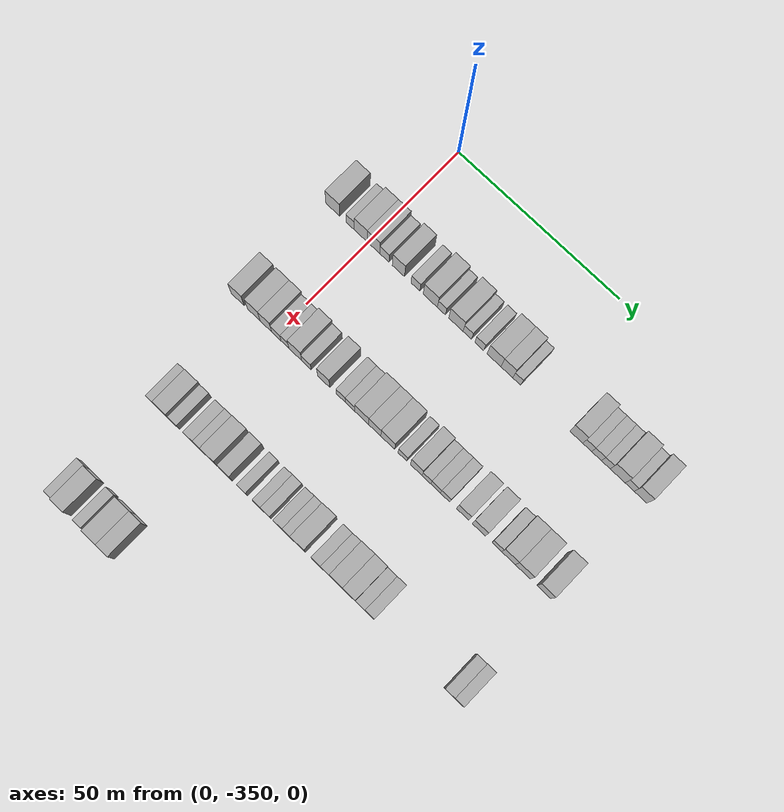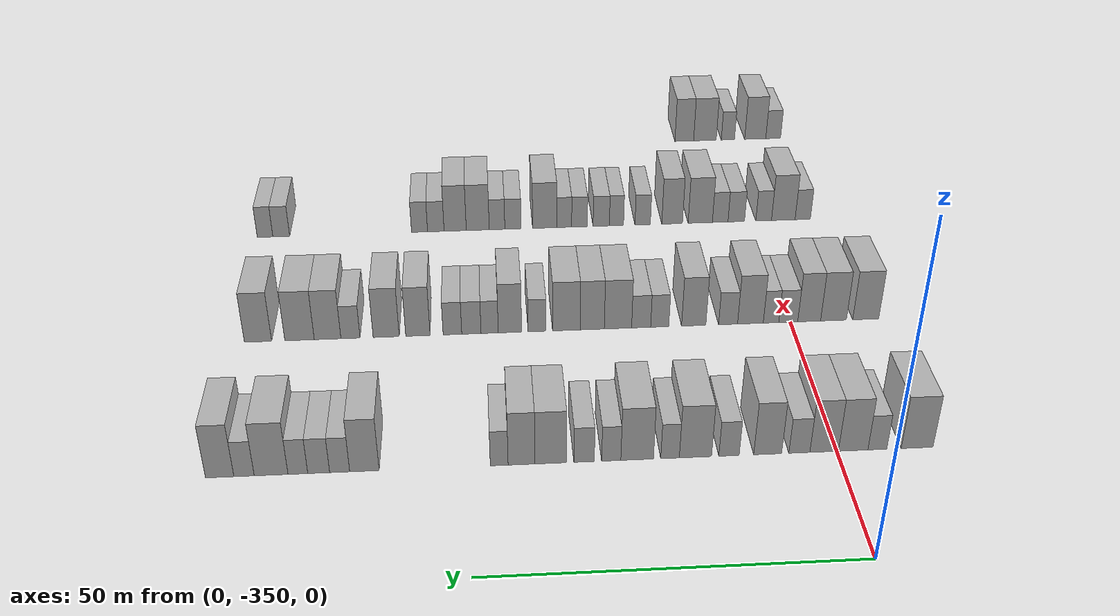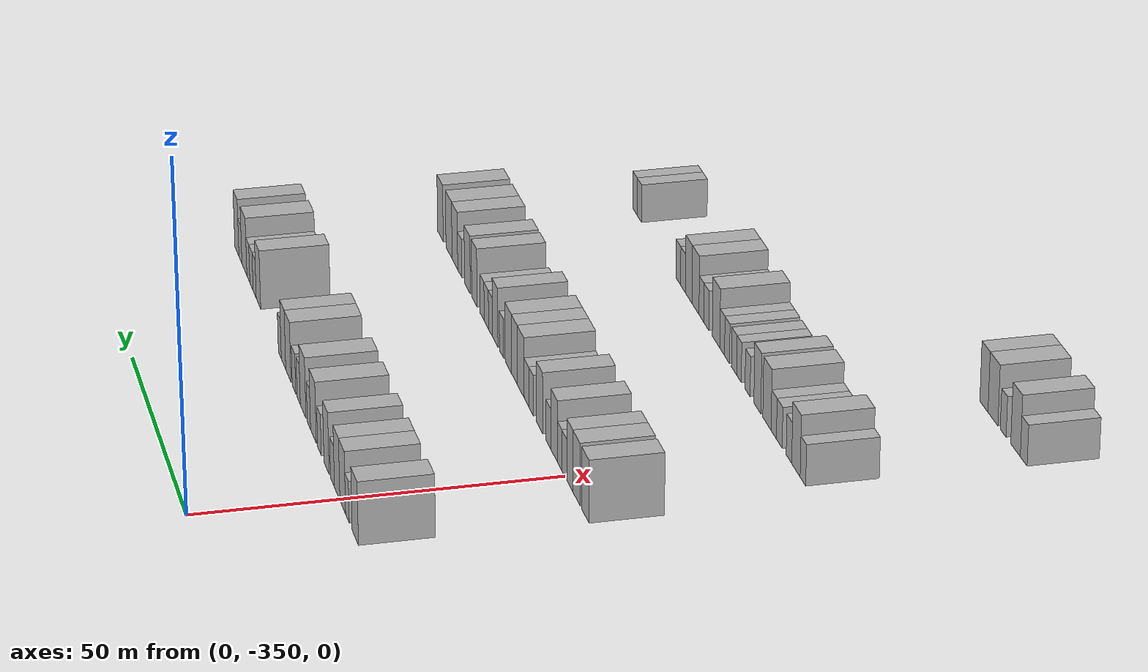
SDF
<sdf version="1.6">
 <world name="default">
  <model name="building_21">
   <static>1</static>
   <pose>25.0000 -361.1903 0 0.000000 0.000000 0.000000</pose>
   <link name="link">
    <pose>0 0 4.50 0 0 0</pose>
    <collision name="collision"><geometry><box><size>10.0000 4.4393 9.0000</size></box></geometry></collision>
    <visual name="visual">
     <cast_shadows>0</cast_shadows>
     <geometry><box><size>10.0000 4.4393 9.0000</size></box></geometry>
     <material>
      <script>
       <uri>model://HANNAS_wall/materials/scripts</uri>
       <uri>model://HANNAS_wall/materials/textures</uri>
       <name>vrc/HANNAS_wall</name>
      </script>
     </material>
    </visual>
   </link>
  </model>
  <model name="building_22">
   <static>1</static>
   <pose>25.0000 -355.6557 0 0.000000 0.000000 0.000000</pose>
   <link name="link">
    <pose>0 0 3.00 0 0 0</pose>
    <collision name="collision"><geometry><box><size>10.0000 2.6299 6.0000</size></box></geometry></collision>
    <visual name="visual">
     <cast_shadows>0</cast_shadows>
     <geometry><box><size>10.0000 2.6299 6.0000</size></box></geometry>
     <material>
      <script>
       <uri>model://HANNAS_wall/materials/scripts</uri>
       <uri>model://HANNAS_wall/materials/textures</uri>
       <name>vrc/HANNAS_wall</name>
      </script>
     </material>
    </visual>
   </link>
  </model>
  <model name="building_23">
   <static>1</static>
   <pose>25.0000 -352.2939 0 0.000000 0.000000 0.000000</pose>
   <link name="link">
    <pose>0 0 4.50 0 0 0</pose>
    <collision name="collision"><geometry><box><size>10.0000 4.0938 9.0000</size></box></geometry></collision>
    <visual name="visual">
     <cast_shadows>0</cast_shadows>
     <geometry><box><size>10.0000 4.0938 9.0000</size></box></geometry>
     <material>
      <script>
       <uri>model://HANNAS_wall/materials/scripts</uri>
       <uri>model://HANNAS_wall/materials/textures</uri>
       <name>vrc/HANNAS_wall</name>
      </script>
     </material>
    </visual>
   </link>
  </model>
  <model name="building_24">
   <static>1</static>
   <pose>25.0000 -348.2709 0 0.000000 0.000000 0.000000</pose>
   <link name="link">
    <pose>0 0 4.50 0 0 0</pose>
    <collision name="collision"><geometry><box><size>10.0000 3.9522 9.0000</size></box></geometry></collision>
    <visual name="visual">
     <cast_shadows>0</cast_shadows>
     <geometry><box><size>10.0000 3.9522 9.0000</size></box></geometry>
     <material>
      <script>
       <uri>model://HANNAS_wall/materials/scripts</uri>
       <uri>model://HANNAS_wall/materials/textures</uri>
       <name>vrc/HANNAS_wall</name>
      </script>
     </material>
    </visual>
   </link>
  </model>
  <model name="building_25">
   <static>1</static>
   <pose>25.0000 -344.8413 0 0.000000 0.000000 0.000000</pose>
   <link name="link">
    <pose>0 0 3.00 0 0 0</pose>
    <collision name="collision"><geometry><box><size>10.0000 2.9071 6.0000</size></box></geometry></collision>
    <visual name="visual">
     <cast_shadows>0</cast_shadows>
     <geometry><box><size>10.0000 2.9071 6.0000</size></box></geometry>
     <material>
      <script>
       <uri>model://HANNAS_wall/materials/scripts</uri>
       <uri>model://HANNAS_wall/materials/textures</uri>
       <name>vrc/HANNAS_wall</name>
      </script>
     </material>
    </visual>
   </link>
  </model>
  <model name="building_26">
   <static>1</static>
   <pose>25.0000 -340.4635 0 0.000000 0.000000 0.000000</pose>
   <link name="link">
    <pose>0 0 4.50 0 0 0</pose>
    <collision name="collision"><geometry><box><size>10.0000 3.8486 9.0000</size></box></geometry></collision>
    <visual name="visual">
     <cast_shadows>0</cast_shadows>
     <geometry><box><size>10.0000 3.8486 9.0000</size></box></geometry>
     <material>
      <script>
       <uri>model://HANNAS_wall/materials/scripts</uri>
       <uri>model://HANNAS_wall/materials/textures</uri>
       <name>vrc/HANNAS_wall</name>
      </script>
     </material>
    </visual>
   </link>
  </model>
  <model name="building_27">
   <static>1</static>
   <pose>25.0000 -335.1388 0 0.000000 0.000000 0.000000</pose>
   <link name="link">
    <pose>0 0 3.00 0 0 0</pose>
    <collision name="collision"><geometry><box><size>10.0000 2.8007 6.0000</size></box></geometry></collision>
    <visual name="visual">
     <cast_shadows>0</cast_shadows>
     <geometry><box><size>10.0000 2.8007 6.0000</size></box></geometry>
     <material>
      <script>
       <uri>model://HANNAS_wall/materials/scripts</uri>
       <uri>model://HANNAS_wall/materials/textures</uri>
       <name>vrc/HANNAS_wall</name>
      </script>
     </material>
    </visual>
   </link>
  </model>
  <model name="building_28">
   <static>1</static>
   <pose>25.0000 -330.5292 0 0.000000 0.000000 0.000000</pose>
   <link name="link">
    <pose>0 0 4.50 0 0 0</pose>
    <collision name="collision"><geometry><box><size>10.0000 4.4186 9.0000</size></box></geometry></collision>
    <visual name="visual">
     <cast_shadows>0</cast_shadows>
     <geometry><box><size>10.0000 4.4186 9.0000</size></box></geometry>
     <material>
      <script>
       <uri>model://HANNAS_wall/materials/scripts</uri>
       <uri>model://HANNAS_wall/materials/textures</uri>
       <name>vrc/HANNAS_wall</name>
      </script>
     </material>
    </visual>
   </link>
  </model>
  <model name="building_29">
   <static>1</static>
   <pose>25.0000 -327.0513 0 0.000000 0.000000 0.000000</pose>
   <link name="link">
    <pose>0 0 3.00 0 0 0</pose>
    <collision name="collision"><geometry><box><size>10.0000 2.5372 6.0000</size></box></geometry></collision>
    <visual name="visual">
     <cast_shadows>0</cast_shadows>
     <geometry><box><size>10.0000 2.5372 6.0000</size></box></geometry>
     <material>
      <script>
       <uri>model://HANNAS_wall/materials/scripts</uri>
       <uri>model://HANNAS_wall/materials/textures</uri>
       <name>vrc/HANNAS_wall</name>
      </script>
     </material>
    </visual>
   </link>
  </model>
  <model name="building_30">
   <static>1</static>
   <pose>25.0000 -322.5564 0 0.000000 0.000000 0.000000</pose>
   <link name="link">
    <pose>0 0 4.50 0 0 0</pose>
    <collision name="collision"><geometry><box><size>10.0000 4.4526 9.0000</size></box></geometry></collision>
    <visual name="visual">
     <cast_shadows>0</cast_shadows>
     <geometry><box><size>10.0000 4.4526 9.0000</size></box></geometry>
     <material>
      <script>
       <uri>model://HANNAS_wall/materials/scripts</uri>
       <uri>model://HANNAS_wall/materials/textures</uri>
       <name>vrc/HANNAS_wall</name>
      </script>
     </material>
    </visual>
   </link>
  </model>
  <model name="building_31">
   <static>1</static>
   <pose>25.0000 -319.0257 0 0.000000 0.000000 0.000000</pose>
   <link name="link">
    <pose>0 0 3.00 0 0 0</pose>
    <collision name="collision"><geometry><box><size>10.0000 2.6088 6.0000</size></box></geometry></collision>
    <visual name="visual">
     <cast_shadows>0</cast_shadows>
     <geometry><box><size>10.0000 2.6088 6.0000</size></box></geometry>
     <material>
      <script>
       <uri>model://HANNAS_wall/materials/scripts</uri>
       <uri>model://HANNAS_wall/materials/textures</uri>
       <name>vrc/HANNAS_wall</name>
      </script>
     </material>
    </visual>
   </link>
  </model>
  <model name="building_32">
   <static>1</static>
   <pose>25.0000 -315.3328 0 0.000000 0.000000 0.000000</pose>
   <link name="link">
    <pose>0 0 3.00 0 0 0</pose>
    <collision name="collision"><geometry><box><size>10.0000 2.7768 6.0000</size></box></geometry></collision>
    <visual name="visual">
     <cast_shadows>0</cast_shadows>
     <geometry><box><size>10.0000 2.7768 6.0000</size></box></geometry>
     <material>
      <script>
       <uri>model://HANNAS_wall/materials/scripts</uri>
       <uri>model://HANNAS_wall/materials/textures</uri>
       <name>vrc/HANNAS_wall</name>
      </script>
     </material>
    </visual>
   </link>
  </model>
  <model name="building_33">
   <static>1</static>
   <pose>25.0000 -310.8081 0 0.000000 0.000000 0.000000</pose>
   <link name="link">
    <pose>0 0 4.50 0 0 0</pose>
    <collision name="collision"><geometry><box><size>10.0000 4.2726 9.0000</size></box></geometry></collision>
    <visual name="visual">
     <cast_shadows>0</cast_shadows>
     <geometry><box><size>10.0000 4.2726 9.0000</size></box></geometry>
     <material>
      <script>
       <uri>model://HANNAS_wall/materials/scripts</uri>
       <uri>model://HANNAS_wall/materials/textures</uri>
       <name>vrc/HANNAS_wall</name>
      </script>
     </material>
    </visual>
   </link>
  </model>
  <model name="building_34">
   <static>1</static>
   <pose>25.0000 -306.8555 0 0.000000 0.000000 0.000000</pose>
   <link name="link">
    <pose>0 0 4.50 0 0 0</pose>
    <collision name="collision"><geometry><box><size>10.0000 3.6327 9.0000</size></box></geometry></collision>
    <visual name="visual">
     <cast_shadows>0</cast_shadows>
     <geometry><box><size>10.0000 3.6327 9.0000</size></box></geometry>
     <material>
      <script>
       <uri>model://HANNAS_wall/materials/scripts</uri>
       <uri>model://HANNAS_wall/materials/textures</uri>
       <name>vrc/HANNAS_wall</name>
      </script>
     </material>
    </visual>
   </link>
  </model>
  <model name="building_35">
   <static>1</static>
   <pose>25.0000 -303.8384 0 0.000000 0.000000 0.000000</pose>
   <link name="link">
    <pose>0 0 3.00 0 0 0</pose>
    <collision name="collision"><geometry><box><size>10.0000 2.4015 6.0000</size></box></geometry></collision>
    <visual name="visual">
     <cast_shadows>0</cast_shadows>
     <geometry><box><size>10.0000 2.4015 6.0000</size></box></geometry>
     <material>
      <script>
       <uri>model://HANNAS_wall/materials/scripts</uri>
       <uri>model://HANNAS_wall/materials/textures</uri>
       <name>vrc/HANNAS_wall</name>
      </script>
     </material>
    </visual>
   </link>
  </model>
  <model name="building_36">
   <static>1</static>
   <pose>25.0000 -285.7423 0 0.000000 0.000000 0.000000</pose>
   <link name="link">
    <pose>0 0 4.50 0 0 0</pose>
    <collision name="collision"><geometry><box><size>10.0000 3.9302 9.0000</size></box></geometry></collision>
    <visual name="visual">
     <cast_shadows>0</cast_shadows>
     <geometry><box><size>10.0000 3.9302 9.0000</size></box></geometry>
     <material>
      <script>
       <uri>model://HANNAS_wall/materials/scripts</uri>
       <uri>model://HANNAS_wall/materials/textures</uri>
       <name>vrc/HANNAS_wall</name>
      </script>
     </material>
    </visual>
   </link>
  </model>
  <model name="building_37">
   <static>1</static>
   <pose>25.0000 -282.4414 0 0.000000 0.000000 0.000000</pose>
   <link name="link">
    <pose>0 0 3.00 0 0 0</pose>
    <collision name="collision"><geometry><box><size>10.0000 2.6717 6.0000</size></box></geometry></collision>
    <visual name="visual">
     <cast_shadows>0</cast_shadows>
     <geometry><box><size>10.0000 2.6717 6.0000</size></box></geometry>
     <material>
      <script>
       <uri>model://HANNAS_wall/materials/scripts</uri>
       <uri>model://HANNAS_wall/materials/textures</uri>
       <name>vrc/HANNAS_wall</name>
      </script>
     </material>
    </visual>
   </link>
  </model>
  <model name="building_38">
   <static>1</static>
   <pose>25.0000 -279.6483 0 0.000000 0.000000 0.000000</pose>
   <link name="link">
    <pose>0 0 3.00 0 0 0</pose>
    <collision name="collision"><geometry><box><size>10.0000 2.9146 6.0000</size></box></geometry></collision>
    <visual name="visual">
     <cast_shadows>0</cast_shadows>
     <geometry><box><size>10.0000 2.9146 6.0000</size></box></geometry>
     <material>
      <script>
       <uri>model://HANNAS_wall/materials/scripts</uri>
       <uri>model://HANNAS_wall/materials/textures</uri>
       <name>vrc/HANNAS_wall</name>
      </script>
     </material>
    </visual>
   </link>
  </model>
  <model name="building_39">
   <static>1</static>
   <pose>25.0000 -276.8783 0 0.000000 0.000000 0.000000</pose>
   <link name="link">
    <pose>0 0 3.00 0 0 0</pose>
    <collision name="collision"><geometry><box><size>10.0000 2.6253 6.0000</size></box></geometry></collision>
    <visual name="visual">
     <cast_shadows>0</cast_shadows>
     <geometry><box><size>10.0000 2.6253 6.0000</size></box></geometry>
     <material>
      <script>
       <uri>model://HANNAS_wall/materials/scripts</uri>
       <uri>model://HANNAS_wall/materials/textures</uri>
       <name>vrc/HANNAS_wall</name>
      </script>
     </material>
    </visual>
   </link>
  </model>
  <model name="building_40">
   <static>1</static>
   <pose>25.0000 -273.3258 0 0.000000 0.000000 0.000000</pose>
   <link name="link">
    <pose>0 0 4.50 0 0 0</pose>
    <collision name="collision"><geometry><box><size>10.0000 4.4799 9.0000</size></box></geometry></collision>
    <visual name="visual">
     <cast_shadows>0</cast_shadows>
     <geometry><box><size>10.0000 4.4799 9.0000</size></box></geometry>
     <material>
      <script>
       <uri>model://HANNAS_wall/materials/scripts</uri>
       <uri>model://HANNAS_wall/materials/textures</uri>
       <name>vrc/HANNAS_wall</name>
      </script>
     </material>
    </visual>
   </link>
  </model>
  <model name="building_41">
   <static>1</static>
   <pose>25.0000 -269.7409 0 0.000000 0.000000 0.000000</pose>
   <link name="link">
    <pose>0 0 3.00 0 0 0</pose>
    <collision name="collision"><geometry><box><size>10.0000 2.6898 6.0000</size></box></geometry></collision>
    <visual name="visual">
     <cast_shadows>0</cast_shadows>
     <geometry><box><size>10.0000 2.6898 6.0000</size></box></geometry>
     <material>
      <script>
       <uri>model://HANNAS_wall/materials/scripts</uri>
       <uri>model://HANNAS_wall/materials/textures</uri>
       <name>vrc/HANNAS_wall</name>
      </script>
     </material>
    </visual>
   </link>
  </model>
  <model name="building_42">
   <static>1</static>
   <pose>25.0000 -266.5180 0 0.000000 0.000000 0.000000</pose>
   <link name="link">
    <pose>0 0 4.50 0 0 0</pose>
    <collision name="collision"><geometry><box><size>10.0000 3.7562 9.0000</size></box></geometry></collision>
    <visual name="visual">
     <cast_shadows>0</cast_shadows>
     <geometry><box><size>10.0000 3.7562 9.0000</size></box></geometry>
     <material>
      <script>
       <uri>model://HANNAS_wall/materials/scripts</uri>
       <uri>model://HANNAS_wall/materials/textures</uri>
       <name>vrc/HANNAS_wall</name>
      </script>
     </material>
    </visual>
   </link>
  </model>
  <model name="building_255">
   <static>1</static>
   <pose>55.0000 -361.9140 0 0.000000 0.000000 0.000000</pose>
   <link name="link">
    <pose>0 0 4.50 0 0 0</pose>
    <collision name="collision"><geometry><box><size>10.0000 4.1293 9.0000</size></box></geometry></collision>
    <visual name="visual">
     <cast_shadows>0</cast_shadows>
     <geometry><box><size>10.0000 4.1293 9.0000</size></box></geometry>
     <material>
      <script>
       <uri>model://HANNAS_wall/materials/scripts</uri>
       <uri>model://HANNAS_wall/materials/textures</uri>
       <name>vrc/HANNAS_wall</name>
      </script>
     </material>
    </visual>
   </link>
  </model>
  <model name="building_256">
   <static>1</static>
   <pose>55.0000 -356.8083 0 0.000000 0.000000 0.000000</pose>
   <link name="link">
    <pose>0 0 4.50 0 0 0</pose>
    <collision name="collision"><geometry><box><size>10.0000 4.0820 9.0000</size></box></geometry></collision>
    <visual name="visual">
     <cast_shadows>0</cast_shadows>
     <geometry><box><size>10.0000 4.0820 9.0000</size></box></geometry>
     <material>
      <script>
       <uri>model://HANNAS_wall/materials/scripts</uri>
       <uri>model://HANNAS_wall/materials/textures</uri>
       <name>vrc/HANNAS_wall</name>
      </script>
     </material>
    </visual>
   </link>
  </model>
  <model name="building_257">
   <static>1</static>
   <pose>55.0000 -352.9622 0 0.000000 0.000000 0.000000</pose>
   <link name="link">
    <pose>0 0 4.50 0 0 0</pose>
    <collision name="collision"><geometry><box><size>10.0000 3.6101 9.0000</size></box></geometry></collision>
    <visual name="visual">
     <cast_shadows>0</cast_shadows>
     <geometry><box><size>10.0000 3.6101 9.0000</size></box></geometry>
     <material>
      <script>
       <uri>model://HANNAS_wall/materials/scripts</uri>
       <uri>model://HANNAS_wall/materials/textures</uri>
       <name>vrc/HANNAS_wall</name>
      </script>
     </material>
    </visual>
   </link>
  </model>
  <model name="building_258">
   <static>1</static>
   <pose>55.0000 -349.6657 0 0.000000 0.000000 0.000000</pose>
   <link name="link">
    <pose>0 0 3.00 0 0 0</pose>
    <collision name="collision"><geometry><box><size>10.0000 2.9829 6.0000</size></box></geometry></collision>
    <visual name="visual">
     <cast_shadows>0</cast_shadows>
     <geometry><box><size>10.0000 2.9829 6.0000</size></box></geometry>
     <material>
      <script>
       <uri>model://HANNAS_wall/materials/scripts</uri>
       <uri>model://HANNAS_wall/materials/textures</uri>
       <name>vrc/HANNAS_wall</name>
      </script>
     </material>
    </visual>
   </link>
  </model>
  <model name="building_259">
   <static>1</static>
   <pose>55.0000 -346.9497 0 0.000000 0.000000 0.000000</pose>
   <link name="link">
    <pose>0 0 3.00 0 0 0</pose>
    <collision name="collision"><geometry><box><size>10.0000 2.4492 6.0000</size></box></geometry></collision>
    <visual name="visual">
     <cast_shadows>0</cast_shadows>
     <geometry><box><size>10.0000 2.4492 6.0000</size></box></geometry>
     <material>
      <script>
       <uri>model://HANNAS_wall/materials/scripts</uri>
       <uri>model://HANNAS_wall/materials/textures</uri>
       <name>vrc/HANNAS_wall</name>
      </script>
     </material>
    </visual>
   </link>
  </model>
  <model name="building_260">
   <static>1</static>
   <pose>55.0000 -343.7051 0 0.000000 0.000000 0.000000</pose>
   <link name="link">
    <pose>0 0 4.50 0 0 0</pose>
    <collision name="collision"><geometry><box><size>10.0000 4.0400 9.0000</size></box></geometry></collision>
    <visual name="visual">
     <cast_shadows>0</cast_shadows>
     <geometry><box><size>10.0000 4.0400 9.0000</size></box></geometry>
     <material>
      <script>
       <uri>model://HANNAS_wall/materials/scripts</uri>
       <uri>model://HANNAS_wall/materials/textures</uri>
       <name>vrc/HANNAS_wall</name>
      </script>
     </material>
    </visual>
   </link>
  </model>
  <model name="building_261">
   <static>1</static>
   <pose>55.0000 -340.1992 0 0.000000 0.000000 0.000000</pose>
   <link name="link">
    <pose>0 0 3.00 0 0 0</pose>
    <collision name="collision"><geometry><box><size>10.0000 2.9718 6.0000</size></box></geometry></collision>
    <visual name="visual">
     <cast_shadows>0</cast_shadows>
     <geometry><box><size>10.0000 2.9718 6.0000</size></box></geometry>
     <material>
      <script>
       <uri>model://HANNAS_wall/materials/scripts</uri>
       <uri>model://HANNAS_wall/materials/textures</uri>
       <name>vrc/HANNAS_wall</name>
      </script>
     </material>
    </visual>
   </link>
  </model>
  <model name="building_262">
   <static>1</static>
   <pose>55.0000 -334.8145 0 0.000000 0.000000 0.000000</pose>
   <link name="link">
    <pose>0 0 4.50 0 0 0</pose>
    <collision name="collision"><geometry><box><size>10.0000 3.7977 9.0000</size></box></geometry></collision>
    <visual name="visual">
     <cast_shadows>0</cast_shadows>
     <geometry><box><size>10.0000 3.7977 9.0000</size></box></geometry>
     <material>
      <script>
       <uri>model://HANNAS_wall/materials/scripts</uri>
       <uri>model://HANNAS_wall/materials/textures</uri>
       <name>vrc/HANNAS_wall</name>
      </script>
     </material>
    </visual>
   </link>
  </model>
  <model name="building_263">
   <static>1</static>
   <pose>55.0000 -329.5013 0 0.000000 0.000000 0.000000</pose>
   <link name="link">
    <pose>0 0 3.00 0 0 0</pose>
    <collision name="collision"><geometry><box><size>10.0000 2.8289 6.0000</size></box></geometry></collision>
    <visual name="visual">
     <cast_shadows>0</cast_shadows>
     <geometry><box><size>10.0000 2.8289 6.0000</size></box></geometry>
     <material>
      <script>
       <uri>model://HANNAS_wall/materials/scripts</uri>
       <uri>model://HANNAS_wall/materials/textures</uri>
       <name>vrc/HANNAS_wall</name>
      </script>
     </material>
    </visual>
   </link>
  </model>
  <model name="building_264">
   <static>1</static>
   <pose>55.0000 -326.6032 0 0.000000 0.000000 0.000000</pose>
   <link name="link">
    <pose>0 0 3.00 0 0 0</pose>
    <collision name="collision"><geometry><box><size>10.0000 2.9672 6.0000</size></box></geometry></collision>
    <visual name="visual">
     <cast_shadows>0</cast_shadows>
     <geometry><box><size>10.0000 2.9672 6.0000</size></box></geometry>
     <material>
      <script>
       <uri>model://HANNAS_wall/materials/scripts</uri>
       <uri>model://HANNAS_wall/materials/textures</uri>
       <name>vrc/HANNAS_wall</name>
      </script>
     </material>
    </visual>
   </link>
  </model>
  <model name="building_265">
   <static>1</static>
   <pose>55.0000 -322.9945 0 0.000000 0.000000 0.000000</pose>
   <link name="link">
    <pose>0 0 4.50 0 0 0</pose>
    <collision name="collision"><geometry><box><size>10.0000 4.2501 9.0000</size></box></geometry></collision>
    <visual name="visual">
     <cast_shadows>0</cast_shadows>
     <geometry><box><size>10.0000 4.2501 9.0000</size></box></geometry>
     <material>
      <script>
       <uri>model://HANNAS_wall/materials/scripts</uri>
       <uri>model://HANNAS_wall/materials/textures</uri>
       <name>vrc/HANNAS_wall</name>
      </script>
     </material>
    </visual>
   </link>
  </model>
  <model name="building_266">
   <static>1</static>
   <pose>55.0000 -318.9940 0 0.000000 0.000000 0.000000</pose>
   <link name="link">
    <pose>0 0 4.50 0 0 0</pose>
    <collision name="collision"><geometry><box><size>10.0000 3.7510 9.0000</size></box></geometry></collision>
    <visual name="visual">
     <cast_shadows>0</cast_shadows>
     <geometry><box><size>10.0000 3.7510 9.0000</size></box></geometry>
     <material>
      <script>
       <uri>model://HANNAS_wall/materials/scripts</uri>
       <uri>model://HANNAS_wall/materials/textures</uri>
       <name>vrc/HANNAS_wall</name>
      </script>
     </material>
    </visual>
   </link>
  </model>
  <model name="building_267">
   <static>1</static>
   <pose>55.0000 -314.9850 0 0.000000 0.000000 0.000000</pose>
   <link name="link">
    <pose>0 0 4.50 0 0 0</pose>
    <collision name="collision"><geometry><box><size>10.0000 4.2669 9.0000</size></box></geometry></collision>
    <visual name="visual">
     <cast_shadows>0</cast_shadows>
     <geometry><box><size>10.0000 4.2669 9.0000</size></box></geometry>
     <material>
      <script>
       <uri>model://HANNAS_wall/materials/scripts</uri>
       <uri>model://HANNAS_wall/materials/textures</uri>
       <name>vrc/HANNAS_wall</name>
      </script>
     </material>
    </visual>
   </link>
  </model>
  <model name="building_268">
   <static>1</static>
   <pose>55.0000 -310.4622 0 0.000000 0.000000 0.000000</pose>
   <link name="link">
    <pose>0 0 3.00 0 0 0</pose>
    <collision name="collision"><geometry><box><size>10.0000 2.7788 6.0000</size></box></geometry></collision>
    <visual name="visual">
     <cast_shadows>0</cast_shadows>
     <geometry><box><size>10.0000 2.7788 6.0000</size></box></geometry>
     <material>
      <script>
       <uri>model://HANNAS_wall/materials/scripts</uri>
       <uri>model://HANNAS_wall/materials/textures</uri>
       <name>vrc/HANNAS_wall</name>
      </script>
     </material>
    </visual>
   </link>
  </model>
  <model name="building_269">
   <static>1</static>
   <pose>55.0000 -306.2726 0 0.000000 0.000000 0.000000</pose>
   <link name="link">
    <pose>0 0 4.50 0 0 0</pose>
    <collision name="collision"><geometry><box><size>10.0000 3.6004 9.0000</size></box></geometry></collision>
    <visual name="visual">
     <cast_shadows>0</cast_shadows>
     <geometry><box><size>10.0000 3.6004 9.0000</size></box></geometry>
     <material>
      <script>
       <uri>model://HANNAS_wall/materials/scripts</uri>
       <uri>model://HANNAS_wall/materials/textures</uri>
       <name>vrc/HANNAS_wall</name>
      </script>
     </material>
    </visual>
   </link>
  </model>
  <model name="building_270">
   <static>1</static>
   <pose>55.0000 -303.1470 0 0.000000 0.000000 0.000000</pose>
   <link name="link">
    <pose>0 0 3.00 0 0 0</pose>
    <collision name="collision"><geometry><box><size>10.0000 2.6508 6.0000</size></box></geometry></collision>
    <visual name="visual">
     <cast_shadows>0</cast_shadows>
     <geometry><box><size>10.0000 2.6508 6.0000</size></box></geometry>
     <material>
      <script>
       <uri>model://HANNAS_wall/materials/scripts</uri>
       <uri>model://HANNAS_wall/materials/textures</uri>
       <name>vrc/HANNAS_wall</name>
      </script>
     </material>
    </visual>
   </link>
  </model>
  <model name="building_271">
   <static>1</static>
   <pose>55.0000 -300.3409 0 0.000000 0.000000 0.000000</pose>
   <link name="link">
    <pose>0 0 3.00 0 0 0</pose>
    <collision name="collision"><geometry><box><size>10.0000 2.9614 6.0000</size></box></geometry></collision>
    <visual name="visual">
     <cast_shadows>0</cast_shadows>
     <geometry><box><size>10.0000 2.9614 6.0000</size></box></geometry>
     <material>
      <script>
       <uri>model://HANNAS_wall/materials/scripts</uri>
       <uri>model://HANNAS_wall/materials/textures</uri>
       <name>vrc/HANNAS_wall</name>
      </script>
     </material>
    </visual>
   </link>
  </model>
  <model name="building_272">
   <static>1</static>
   <pose>55.0000 -297.4295 0 0.000000 0.000000 0.000000</pose>
   <link name="link">
    <pose>0 0 3.00 0 0 0</pose>
    <collision name="collision"><geometry><box><size>10.0000 2.8615 6.0000</size></box></geometry></collision>
    <visual name="visual">
     <cast_shadows>0</cast_shadows>
     <geometry><box><size>10.0000 2.8615 6.0000</size></box></geometry>
     <material>
      <script>
       <uri>model://HANNAS_wall/materials/scripts</uri>
       <uri>model://HANNAS_wall/materials/textures</uri>
       <name>vrc/HANNAS_wall</name>
      </script>
     </material>
    </visual>
   </link>
  </model>
  <model name="building_273">
   <static>1</static>
   <pose>55.0000 -292.1354 0 0.000000 0.000000 0.000000</pose>
   <link name="link">
    <pose>0 0 4.50 0 0 0</pose>
    <collision name="collision"><geometry><box><size>10.0000 3.7266 9.0000</size></box></geometry></collision>
    <visual name="visual">
     <cast_shadows>0</cast_shadows>
     <geometry><box><size>10.0000 3.7266 9.0000</size></box></geometry>
     <material>
      <script>
       <uri>model://HANNAS_wall/materials/scripts</uri>
       <uri>model://HANNAS_wall/materials/textures</uri>
       <name>vrc/HANNAS_wall</name>
      </script>
     </material>
    </visual>
   </link>
  </model>
  <model name="building_274">
   <static>1</static>
   <pose>55.0000 -287.2820 0 0.000000 0.000000 0.000000</pose>
   <link name="link">
    <pose>0 0 4.50 0 0 0</pose>
    <collision name="collision"><geometry><box><size>10.0000 3.9802 9.0000</size></box></geometry></collision>
    <visual name="visual">
     <cast_shadows>0</cast_shadows>
     <geometry><box><size>10.0000 3.9802 9.0000</size></box></geometry>
     <material>
      <script>
       <uri>model://HANNAS_wall/materials/scripts</uri>
       <uri>model://HANNAS_wall/materials/textures</uri>
       <name>vrc/HANNAS_wall</name>
      </script>
     </material>
    </visual>
   </link>
  </model>
  <model name="building_275">
   <static>1</static>
   <pose>55.0000 -281.8355 0 0.000000 0.000000 0.000000</pose>
   <link name="link">
    <pose>0 0 3.00 0 0 0</pose>
    <collision name="collision"><geometry><box><size>10.0000 2.9130 6.0000</size></box></geometry></collision>
    <visual name="visual">
     <cast_shadows>0</cast_shadows>
     <geometry><box><size>10.0000 2.9130 6.0000</size></box></geometry>
     <material>
      <script>
       <uri>model://HANNAS_wall/materials/scripts</uri>
       <uri>model://HANNAS_wall/materials/textures</uri>
       <name>vrc/HANNAS_wall</name>
      </script>
     </material>
    </visual>
   </link>
  </model>
  <model name="building_276">
   <static>1</static>
   <pose>55.0000 -278.3540 0 0.000000 0.000000 0.000000</pose>
   <link name="link">
    <pose>0 0 4.50 0 0 0</pose>
    <collision name="collision"><geometry><box><size>10.0000 4.0498 9.0000</size></box></geometry></collision>
    <visual name="visual">
     <cast_shadows>0</cast_shadows>
     <geometry><box><size>10.0000 4.0498 9.0000</size></box></geometry>
     <material>
      <script>
       <uri>model://HANNAS_wall/materials/scripts</uri>
       <uri>model://HANNAS_wall/materials/textures</uri>
       <name>vrc/HANNAS_wall</name>
      </script>
     </material>
    </visual>
   </link>
  </model>
  <model name="building_277">
   <static>1</static>
   <pose>55.0000 -274.0998 0 0.000000 0.000000 0.000000</pose>
   <link name="link">
    <pose>0 0 4.50 0 0 0</pose>
    <collision name="collision"><geometry><box><size>10.0000 4.4587 9.0000</size></box></geometry></collision>
    <visual name="visual">
     <cast_shadows>0</cast_shadows>
     <geometry><box><size>10.0000 4.4587 9.0000</size></box></geometry>
     <material>
      <script>
       <uri>model://HANNAS_wall/materials/scripts</uri>
       <uri>model://HANNAS_wall/materials/textures</uri>
       <name>vrc/HANNAS_wall</name>
      </script>
     </material>
    </visual>
   </link>
  </model>
  <model name="building_278">
   <static>1</static>
   <pose>55.0000 -267.8125 0 0.000000 0.000000 0.000000</pose>
   <link name="link">
    <pose>0 0 4.50 0 0 0</pose>
    <collision name="collision"><geometry><box><size>10.0000 4.1159 9.0000</size></box></geometry></collision>
    <visual name="visual">
     <cast_shadows>0</cast_shadows>
     <geometry><box><size>10.0000 4.1159 9.0000</size></box></geometry>
     <material>
      <script>
       <uri>model://HANNAS_wall/materials/scripts</uri>
       <uri>model://HANNAS_wall/materials/textures</uri>
       <name>vrc/HANNAS_wall</name>
      </script>
     </material>
    </visual>
   </link>
  </model>
  <model name="building_475">
   <static>1</static>
   <pose>85.0000 -358.5794 0 0.000000 0.000000 0.000000</pose>
   <link name="link">
    <pose>0 0 3.00 0 0 0</pose>
    <collision name="collision"><geometry><box><size>10.0000 2.7102 6.0000</size></box></geometry></collision>
    <visual name="visual">
     <cast_shadows>0</cast_shadows>
     <geometry><box><size>10.0000 2.7102 6.0000</size></box></geometry>
     <material>
      <script>
       <uri>model://HANNAS_wall/materials/scripts</uri>
       <uri>model://HANNAS_wall/materials/textures</uri>
       <name>vrc/HANNAS_wall</name>
      </script>
     </material>
    </visual>
   </link>
  </model>
  <model name="building_476">
   <static>1</static>
   <pose>85.0000 -355.1348 0 0.000000 0.000000 0.000000</pose>
   <link name="link">
    <pose>0 0 4.50 0 0 0</pose>
    <collision name="collision"><geometry><box><size>10.0000 4.1791 9.0000</size></box></geometry></collision>
    <visual name="visual">
     <cast_shadows>0</cast_shadows>
     <geometry><box><size>10.0000 4.1791 9.0000</size></box></geometry>
     <material>
      <script>
       <uri>model://HANNAS_wall/materials/scripts</uri>
       <uri>model://HANNAS_wall/materials/textures</uri>
       <name>vrc/HANNAS_wall</name>
      </script>
     </material>
    </visual>
   </link>
  </model>
  <model name="building_477">
   <static>1</static>
   <pose>85.0000 -351.6624 0 0.000000 0.000000 0.000000</pose>
   <link name="link">
    <pose>0 0 3.00 0 0 0</pose>
    <collision name="collision"><geometry><box><size>10.0000 2.7656 6.0000</size></box></geometry></collision>
    <visual name="visual">
     <cast_shadows>0</cast_shadows>
     <geometry><box><size>10.0000 2.7656 6.0000</size></box></geometry>
     <material>
      <script>
       <uri>model://HANNAS_wall/materials/scripts</uri>
       <uri>model://HANNAS_wall/materials/textures</uri>
       <name>vrc/HANNAS_wall</name>
      </script>
     </material>
    </visual>
   </link>
  </model>
  <model name="building_478">
   <static>1</static>
   <pose>85.0000 -346.8224 0 0.000000 0.000000 0.000000</pose>
   <link name="link">
    <pose>0 0 3.00 0 0 0</pose>
    <collision name="collision"><geometry><box><size>10.0000 2.9144 6.0000</size></box></geometry></collision>
    <visual name="visual">
     <cast_shadows>0</cast_shadows>
     <geometry><box><size>10.0000 2.9144 6.0000</size></box></geometry>
     <material>
      <script>
       <uri>model://HANNAS_wall/materials/scripts</uri>
       <uri>model://HANNAS_wall/materials/textures</uri>
       <name>vrc/HANNAS_wall</name>
      </script>
     </material>
    </visual>
   </link>
  </model>
  <model name="building_479">
   <static>1</static>
   <pose>85.0000 -343.9915 0 0.000000 0.000000 0.000000</pose>
   <link name="link">
    <pose>0 0 3.00 0 0 0</pose>
    <collision name="collision"><geometry><box><size>10.0000 2.7474 6.0000</size></box></geometry></collision>
    <visual name="visual">
     <cast_shadows>0</cast_shadows>
     <geometry><box><size>10.0000 2.7474 6.0000</size></box></geometry>
     <material>
      <script>
       <uri>model://HANNAS_wall/materials/scripts</uri>
       <uri>model://HANNAS_wall/materials/textures</uri>
       <name>vrc/HANNAS_wall</name>
      </script>
     </material>
    </visual>
   </link>
  </model>
  <model name="building_480">
   <static>1</static>
   <pose>85.0000 -340.4857 0 0.000000 0.000000 0.000000</pose>
   <link name="link">
    <pose>0 0 4.50 0 0 0</pose>
    <collision name="collision"><geometry><box><size>10.0000 4.2644 9.0000</size></box></geometry></collision>
    <visual name="visual">
     <cast_shadows>0</cast_shadows>
     <geometry><box><size>10.0000 4.2644 9.0000</size></box></geometry>
     <material>
      <script>
       <uri>model://HANNAS_wall/materials/scripts</uri>
       <uri>model://HANNAS_wall/materials/textures</uri>
       <name>vrc/HANNAS_wall</name>
      </script>
     </material>
    </visual>
   </link>
  </model>
  <model name="building_481">
   <static>1</static>
   <pose>85.0000 -335.5366 0 0.000000 0.000000 0.000000</pose>
   <link name="link">
    <pose>0 0 4.50 0 0 0</pose>
    <collision name="collision"><geometry><box><size>10.0000 3.6338 9.0000</size></box></geometry></collision>
    <visual name="visual">
     <cast_shadows>0</cast_shadows>
     <geometry><box><size>10.0000 3.6338 9.0000</size></box></geometry>
     <material>
      <script>
       <uri>model://HANNAS_wall/materials/scripts</uri>
       <uri>model://HANNAS_wall/materials/textures</uri>
       <name>vrc/HANNAS_wall</name>
      </script>
     </material>
    </visual>
   </link>
  </model>
  <model name="building_482">
   <static>1</static>
   <pose>85.0000 -330.3721 0 0.000000 0.000000 0.000000</pose>
   <link name="link">
    <pose>0 0 3.00 0 0 0</pose>
    <collision name="collision"><geometry><box><size>10.0000 2.6953 6.0000</size></box></geometry></collision>
    <visual name="visual">
     <cast_shadows>0</cast_shadows>
     <geometry><box><size>10.0000 2.6953 6.0000</size></box></geometry>
     <material>
      <script>
       <uri>model://HANNAS_wall/materials/scripts</uri>
       <uri>model://HANNAS_wall/materials/textures</uri>
       <name>vrc/HANNAS_wall</name>
      </script>
     </material>
    </visual>
   </link>
  </model>
  <model name="building_483">
   <static>1</static>
   <pose>85.0000 -325.7874 0 0.000000 0.000000 0.000000</pose>
   <link name="link">
    <pose>0 0 3.00 0 0 0</pose>
    <collision name="collision"><geometry><box><size>10.0000 2.4741 6.0000</size></box></geometry></collision>
    <visual name="visual">
     <cast_shadows>0</cast_shadows>
     <geometry><box><size>10.0000 2.4741 6.0000</size></box></geometry>
     <material>
      <script>
       <uri>model://HANNAS_wall/materials/scripts</uri>
       <uri>model://HANNAS_wall/materials/textures</uri>
       <name>vrc/HANNAS_wall</name>
      </script>
     </material>
    </visual>
   </link>
  </model>
  <model name="building_484">
   <static>1</static>
   <pose>85.0000 -323.1277 0 0.000000 0.000000 0.000000</pose>
   <link name="link">
    <pose>0 0 3.00 0 0 0</pose>
    <collision name="collision"><geometry><box><size>10.0000 2.8453 6.0000</size></box></geometry></collision>
    <visual name="visual">
     <cast_shadows>0</cast_shadows>
     <geometry><box><size>10.0000 2.8453 6.0000</size></box></geometry>
     <material>
      <script>
       <uri>model://HANNAS_wall/materials/scripts</uri>
       <uri>model://HANNAS_wall/materials/textures</uri>
       <name>vrc/HANNAS_wall</name>
      </script>
     </material>
    </visual>
   </link>
  </model>
  <model name="building_485">
   <static>1</static>
   <pose>85.0000 -319.3384 0 0.000000 0.000000 0.000000</pose>
   <link name="link">
    <pose>0 0 3.00 0 0 0</pose>
    <collision name="collision"><geometry><box><size>10.0000 2.7332 6.0000</size></box></geometry></collision>
    <visual name="visual">
     <cast_shadows>0</cast_shadows>
     <geometry><box><size>10.0000 2.7332 6.0000</size></box></geometry>
     <material>
      <script>
       <uri>model://HANNAS_wall/materials/scripts</uri>
       <uri>model://HANNAS_wall/materials/textures</uri>
       <name>vrc/HANNAS_wall</name>
      </script>
     </material>
    </visual>
   </link>
  </model>
  <model name="building_486">
   <static>1</static>
   <pose>85.0000 -316.6797 0 0.000000 0.000000 0.000000</pose>
   <link name="link">
    <pose>0 0 3.00 0 0 0</pose>
    <collision name="collision"><geometry><box><size>10.0000 2.5844 6.0000</size></box></geometry></collision>
    <visual name="visual">
     <cast_shadows>0</cast_shadows>
     <geometry><box><size>10.0000 2.5844 6.0000</size></box></geometry>
     <material>
      <script>
       <uri>model://HANNAS_wall/materials/scripts</uri>
       <uri>model://HANNAS_wall/materials/textures</uri>
       <name>vrc/HANNAS_wall</name>
      </script>
     </material>
    </visual>
   </link>
  </model>
  <model name="building_487">
   <static>1</static>
   <pose>85.0000 -313.2870 0 0.000000 0.000000 0.000000</pose>
   <link name="link">
    <pose>0 0 4.50 0 0 0</pose>
    <collision name="collision"><geometry><box><size>10.0000 4.2010 9.0000</size></box></geometry></collision>
    <visual name="visual">
     <cast_shadows>0</cast_shadows>
     <geometry><box><size>10.0000 4.2010 9.0000</size></box></geometry>
     <material>
      <script>
       <uri>model://HANNAS_wall/materials/scripts</uri>
       <uri>model://HANNAS_wall/materials/textures</uri>
       <name>vrc/HANNAS_wall</name>
      </script>
     </material>
    </visual>
   </link>
  </model>
  <model name="building_488">
   <static>1</static>
   <pose>85.0000 -307.7768 0 0.000000 0.000000 0.000000</pose>
   <link name="link">
    <pose>0 0 3.00 0 0 0</pose>
    <collision name="collision"><geometry><box><size>10.0000 2.8193 6.0000</size></box></geometry></collision>
    <visual name="visual">
     <cast_shadows>0</cast_shadows>
     <geometry><box><size>10.0000 2.8193 6.0000</size></box></geometry>
     <material>
      <script>
       <uri>model://HANNAS_wall/materials/scripts</uri>
       <uri>model://HANNAS_wall/materials/textures</uri>
       <name>vrc/HANNAS_wall</name>
      </script>
     </material>
    </visual>
   </link>
  </model>
  <model name="building_489">
   <static>1</static>
   <pose>85.0000 -305.0185 0 0.000000 0.000000 0.000000</pose>
   <link name="link">
    <pose>0 0 3.00 0 0 0</pose>
    <collision name="collision"><geometry><box><size>10.0000 2.6972 6.0000</size></box></geometry></collision>
    <visual name="visual">
     <cast_shadows>0</cast_shadows>
     <geometry><box><size>10.0000 2.6972 6.0000</size></box></geometry>
     <material>
      <script>
       <uri>model://HANNAS_wall/materials/scripts</uri>
       <uri>model://HANNAS_wall/materials/textures</uri>
       <name>vrc/HANNAS_wall</name>
      </script>
     </material>
    </visual>
   </link>
  </model>
  <model name="building_490">
   <static>1</static>
   <pose>85.0000 -301.6854 0 0.000000 0.000000 0.000000</pose>
   <link name="link">
    <pose>0 0 4.50 0 0 0</pose>
    <collision name="collision"><geometry><box><size>10.0000 3.9691 9.0000</size></box></geometry></collision>
    <visual name="visual">
     <cast_shadows>0</cast_shadows>
     <geometry><box><size>10.0000 3.9691 9.0000</size></box></geometry>
     <material>
      <script>
       <uri>model://HANNAS_wall/materials/scripts</uri>
       <uri>model://HANNAS_wall/materials/textures</uri>
       <name>vrc/HANNAS_wall</name>
      </script>
     </material>
    </visual>
   </link>
  </model>
  <model name="building_491">
   <static>1</static>
   <pose>85.0000 -297.7864 0 0.000000 0.000000 0.000000</pose>
   <link name="link">
    <pose>0 0 4.50 0 0 0</pose>
    <collision name="collision"><geometry><box><size>10.0000 3.8287 9.0000</size></box></geometry></collision>
    <visual name="visual">
     <cast_shadows>0</cast_shadows>
     <geometry><box><size>10.0000 3.8287 9.0000</size></box></geometry>
     <material>
      <script>
       <uri>model://HANNAS_wall/materials/scripts</uri>
       <uri>model://HANNAS_wall/materials/textures</uri>
       <name>vrc/HANNAS_wall</name>
      </script>
     </material>
    </visual>
   </link>
  </model>
  <model name="building_492">
   <static>1</static>
   <pose>85.0000 -294.4501 0 0.000000 0.000000 0.000000</pose>
   <link name="link">
    <pose>0 0 3.00 0 0 0</pose>
    <collision name="collision"><geometry><box><size>10.0000 2.8439 6.0000</size></box></geometry></collision>
    <visual name="visual">
     <cast_shadows>0</cast_shadows>
     <geometry><box><size>10.0000 2.8439 6.0000</size></box></geometry>
     <material>
      <script>
       <uri>model://HANNAS_wall/materials/scripts</uri>
       <uri>model://HANNAS_wall/materials/textures</uri>
       <name>vrc/HANNAS_wall</name>
      </script>
     </material>
    </visual>
   </link>
  </model>
  <model name="building_493">
   <static>1</static>
   <pose>85.0000 -291.6486 0 0.000000 0.000000 0.000000</pose>
   <link name="link">
    <pose>0 0 3.00 0 0 0</pose>
    <collision name="collision"><geometry><box><size>10.0000 2.7592 6.0000</size></box></geometry></collision>
    <visual name="visual">
     <cast_shadows>0</cast_shadows>
     <geometry><box><size>10.0000 2.7592 6.0000</size></box></geometry>
     <material>
      <script>
       <uri>model://HANNAS_wall/materials/scripts</uri>
       <uri>model://HANNAS_wall/materials/textures</uri>
       <name>vrc/HANNAS_wall</name>
      </script>
     </material>
    </visual>
   </link>
  </model>
  <model name="building_494">
   <static>1</static>
   <pose>85.0000 -267.9860 0 0.000000 0.000000 0.000000</pose>
   <link name="link">
    <pose>0 0 3.00 0 0 0</pose>
    <collision name="collision"><geometry><box><size>10.0000 2.8554 6.0000</size></box></geometry></collision>
    <visual name="visual">
     <cast_shadows>0</cast_shadows>
     <geometry><box><size>10.0000 2.8554 6.0000</size></box></geometry>
     <material>
      <script>
       <uri>model://HANNAS_wall/materials/scripts</uri>
       <uri>model://HANNAS_wall/materials/textures</uri>
       <name>vrc/HANNAS_wall</name>
      </script>
     </material>
    </visual>
   </link>
  </model>
  <model name="building_495">
   <static>1</static>
   <pose>85.0000 -265.2297 0 0.000000 0.000000 0.000000</pose>
   <link name="link">
    <pose>0 0 3.00 0 0 0</pose>
    <collision name="collision"><geometry><box><size>10.0000 2.6573 6.0000</size></box></geometry></collision>
    <visual name="visual">
     <cast_shadows>0</cast_shadows>
     <geometry><box><size>10.0000 2.6573 6.0000</size></box></geometry>
     <material>
      <script>
       <uri>model://HANNAS_wall/materials/scripts</uri>
       <uri>model://HANNAS_wall/materials/textures</uri>
       <name>vrc/HANNAS_wall</name>
      </script>
     </material>
    </visual>
   </link>
  </model>
  <model name="building_702">
   <static>1</static>
   <pose>115.0000 -359.4128 0 0.000000 0.000000 0.000000</pose>
   <link name="link">
    <pose>0 0 3.00 0 0 0</pose>
    <collision name="collision"><geometry><box><size>10.0000 2.8976 6.0000</size></box></geometry></collision>
    <visual name="visual">
     <cast_shadows>0</cast_shadows>
     <geometry><box><size>10.0000 2.8976 6.0000</size></box></geometry>
     <material>
      <script>
       <uri>model://HANNAS_wall/materials/scripts</uri>
       <uri>model://HANNAS_wall/materials/textures</uri>
       <name>vrc/HANNAS_wall</name>
      </script>
     </material>
    </visual>
   </link>
  </model>
  <model name="building_703">
   <static>1</static>
   <pose>115.0000 -355.8933 0 0.000000 0.000000 0.000000</pose>
   <link name="link">
    <pose>0 0 4.50 0 0 0</pose>
    <collision name="collision"><geometry><box><size>10.0000 4.1414 9.0000</size></box></geometry></collision>
    <visual name="visual">
     <cast_shadows>0</cast_shadows>
     <geometry><box><size>10.0000 4.1414 9.0000</size></box></geometry>
     <material>
      <script>
       <uri>model://HANNAS_wall/materials/scripts</uri>
       <uri>model://HANNAS_wall/materials/textures</uri>
       <name>vrc/HANNAS_wall</name>
      </script>
     </material>
    </visual>
   </link>
  </model>
  <model name="building_704">
   <static>1</static>
   <pose>115.0000 -350.5318 0 0.000000 0.000000 0.000000</pose>
   <link name="link">
    <pose>0 0 3.00 0 0 0</pose>
    <collision name="collision"><geometry><box><size>10.0000 2.5815 6.0000</size></box></geometry></collision>
    <visual name="visual">
     <cast_shadows>0</cast_shadows>
     <geometry><box><size>10.0000 2.5815 6.0000</size></box></geometry>
     <material>
      <script>
       <uri>model://HANNAS_wall/materials/scripts</uri>
       <uri>model://HANNAS_wall/materials/textures</uri>
       <name>vrc/HANNAS_wall</name>
      </script>
     </material>
    </visual>
   </link>
  </model>
  <model name="building_705">
   <static>1</static>
   <pose>115.0000 -346.0387 0 0.000000 0.000000 0.000000</pose>
   <link name="link">
    <pose>0 0 4.50 0 0 0</pose>
    <collision name="collision"><geometry><box><size>10.0000 4.4046 9.0000</size></box></geometry></collision>
    <visual name="visual">
     <cast_shadows>0</cast_shadows>
     <geometry><box><size>10.0000 4.4046 9.0000</size></box></geometry>
     <material>
      <script>
       <uri>model://HANNAS_wall/materials/scripts</uri>
       <uri>model://HANNAS_wall/materials/textures</uri>
       <name>vrc/HANNAS_wall</name>
      </script>
     </material>
    </visual>
   </link>
  </model>
  <model name="building_706">
   <static>1</static>
   <pose>115.0000 -342.0110 0 0.000000 0.000000 0.000000</pose>
   <link name="link">
    <pose>0 0 4.50 0 0 0</pose>
    <collision name="collision"><geometry><box><size>10.0000 3.6510 9.0000</size></box></geometry></collision>
    <visual name="visual">
     <cast_shadows>0</cast_shadows>
     <geometry><box><size>10.0000 3.6510 9.0000</size></box></geometry>
     <material>
      <script>
       <uri>model://HANNAS_wall/materials/scripts</uri>
       <uri>model://HANNAS_wall/materials/textures</uri>
       <name>vrc/HANNAS_wall</name>
      </script>
     </material>
    </visual>
   </link>
  </model>
 </world>
</sdf>
